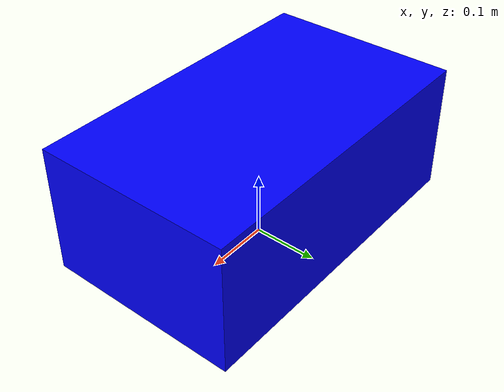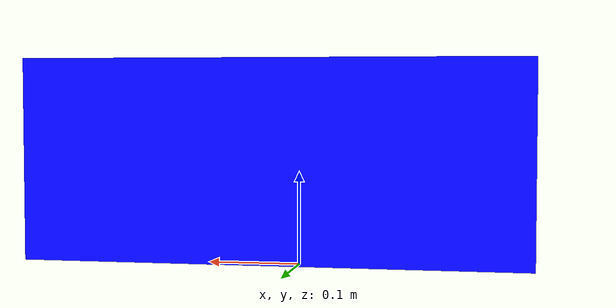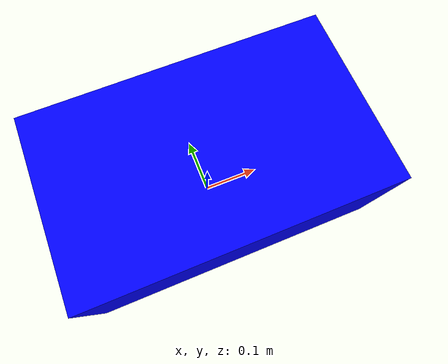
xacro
<?xml version="1.0"?>
<robot xmlns:xacro="http://www.ros.org/wiki/xacro">

  <!-- MATERIAL -->
  <material name="blue">
    <color rgba="0.0 0.0 1.0 1.0"/>
  </material>

  <!-- FOOTPRINT (Plano de referencia del suelo) -->
  <link name="base_footprint"/>

  <!-- base_link (Marco principal del robot) -->
  <link name="base_link"/>

  <joint name="base_footprint_joint" type="fixed">
    <parent link="base_footprint"/>
    <child link="base_link"/>
    <origin xyz="0 0 0" rpy="0 0 0"/>
  </joint>

  <!-- CHASIS VISUAL -->
  <link name="chassis">
    <visual>
      <geometry>
        <box size="0.5 0.3 0.2"/>
      </geometry>
      <material name="blue"/>
    </visual>
    <collision>
      <geometry>
        <box size="0.5 0.3 0.2"/>
      </geometry>
    </collision>
    <inertial>
      <mass value="1.0"/>
      <origin xyz="0 0 0.1"/>
      <inertia ixx="0.01" ixy="0.0" ixz="0.0" iyy="0.01" iyz="0.0" izz="0.01"/>
    </inertial>
  </link>

  <!-- Unión fija entre base_link y chasis -->
  <joint name="chassis_joint" type="fixed">
    <parent link="base_link"/>
    <child link="chassis"/>
    <origin xyz="0 0 0.12"/>
  </joint>

</robot>
